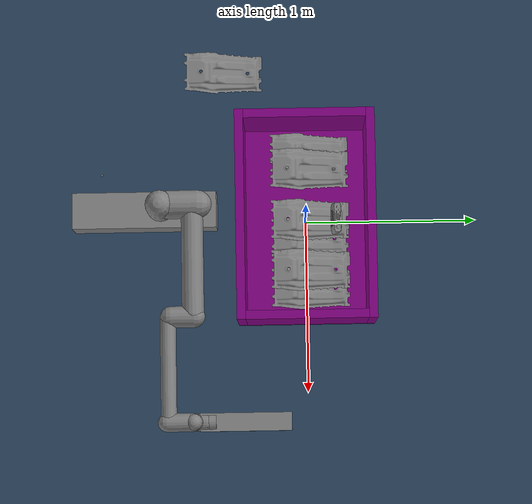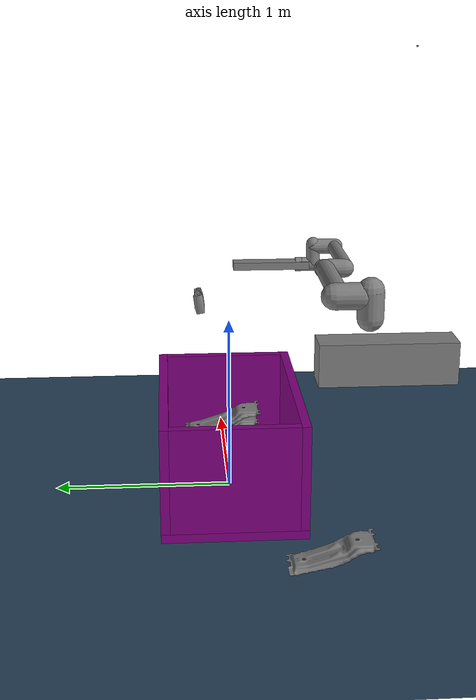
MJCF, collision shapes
<!-- UR5e inspired from https://github.com/google-deepmind/mujoco_menagerie/tree/main/universal_robots_ur5e -->
<!-- Kitchen inspired by https://github.com/Farama-Foundation/Gymnasium-Robotics/tree/main/gymnasium_robotics/envs/franka_kitchen -->

<mujoco model="bmw bin picking scene">
  <include file="ur10e.xml"/>

  <option integrator="RK4" timestep="0.001" />
  <statistic center="0.3 0 0.4" extent="0.8"/>

  <visual>
    <headlight diffuse="0.6 0.6 0.6" ambient="0.1 0.1 0.1" specular="0 0 0"/>
    <rgba haze="0.15 0.25 0.35 1"/>
    <global azimuth="120" elevation="-20"/>
  </visual>
  <!-- Ground and lighting -->
  <asset>
    <texture type="skybox" builtin="gradient" rgb1="0.3 0.5 0.7" rgb2="0 0 0" width="512" height="3072"/>
    <texture type="2d" name="groundplane" builtin="checker" mark="edge" rgb1="0.2 0.3 0.4" rgb2="0.1 0.2 0.3"
      markrgb="0.8 0.8 0.8" width="300" height="300"/>
    <material name="groundplane" texture="groundplane" texuniform="true" texrepeat="5 5" reflectance="0.2"/>
  </asset>\
  <!-- Zivid camera -->
  <asset>
    <material name="purple" rgba="0.5 0 0.5 1"/>
    <material name="shadow" rgba="0 0 0 0.3"/>
    <material name="alum" rgba="0.5 0.5 0.5 1"/>
    <mesh file="ZividTwo-convexhull.stl"/>
    <mesh file="ZividTwo-simplified.stl"/>
  </asset>
  <!-- CAD part -->
  <asset>
    <mesh file="part.stl"/>
  </asset>

  <worldbody>
    <light pos="0 0 1.5" dir="0 0 -1" directional="true"/>
    <geom name="floor" pos="0 0 -0.1" size="0 0 0.05" type="plane" material="groundplane" contype="1" conaffinity="1"/>
    <site name="scene_camera_optical_frame" pos="0.0 -1.0 2.5" euler="3.64 0.0 0.0"/>
    <camera name="scene_camera" pos="0.0 -1.0 2.5" fovy="58" mode="fixed" resolution="640 480" euler="0.5 0.0 0.0"/>
     <!-- Aluminum Base -->
      <body name="alum_base" pos="0 -0.9 0.75">
          <geom type="box" size="0.10 0.40 0.125" material="alum"/>
      </body>

      <!-- Box Base -->
      <body name="box_base" pos="0 0 -0.025">
          <geom type="box" size="0.6 0.4 0.025" material="purple"/>
      </body>

      <!-- Front Wall -->
      <body name="front_wall" pos="0 0.375 0.3">
          <geom type="box" size="0.6 0.025 0.3" material="purple"/>
      </body>

      <!-- Back Wall -->
      <body name="back_wall" pos="0 -0.375 0.3">
          <geom type="box" size="0.6 0.025 0.3" material="purple"/>
      </body>

      <!-- Left Wall -->
      <body name="left_wall" pos="0.575 0 0.3">
          <geom type="box" size="0.025 0.35 0.3" material="purple"/>
      </body>

      <!-- Right Wall -->
      <body name="right_wall" pos="-0.575 0 0.3">
          <geom type="box" size="0.025 0.35 0.3" material="purple"/>
      </body>

      <!-- Zivid Camera -->
      <body name="zivid_camera_link" pos="0.0 0.2 1.151" euler="3.02 0.0 0.0">
          <geom type="mesh" mesh="ZividTwo-simplified" material="alum"/>
          <site name="zivid_camera_optical_frame" pos="0.085 0.028 0.122" euler="3.14 -3.14 0.0"/>
          <camera name="zivid_camera" pos="0.085 0.028 0.122" fovy="58" mode="fixed" resolution="640 480" euler="0.0 3.14 0.0"/>
      </body>

      <!-- CAD part 1-->
      <body name="CAD_part_1" pos="0 0 0.2" euler="0 0 1.57">
          <freejoint/>
          <inertial pos="0 0 0" mass=".1" diaginertia="0.1 0.1 0.1"/>
          <geom type="mesh" mesh="part" material="alum" contype="1" conaffinity="1"/>
      </body>
      <!-- CAD part 2-->
      <body name="CAD_part_2" pos="-0.9 -0.5 0.05" euler="0 0 1.57">
          <freejoint/>
          <inertial pos="0 0 0" mass=".1" diaginertia="0.1 0.1 0.1"/>
          <geom type="mesh" mesh="part" material="alum" contype="1" conaffinity="1"/>
      </body>
      <!-- CAD part 3-->
      <body name="CAD_part_3" pos="0.1 0 0.1" euler="0 0 1.57">
          <freejoint/>
          <inertial pos="0 0 0" mass=".1" diaginertia="0.1 0.1 0.1"/>
          <geom type="mesh" mesh="part" material="alum" contype="1" conaffinity="1"/>
      </body>
      <!-- CAD part 4-->
      <body name="CAD_part_4" pos="0.4 0 0.2" euler="0 0 1.57">
          <freejoint/>
          <inertial pos="0 0 0" mass=".1" diaginertia="0.1 0.1 0.1"/>
          <geom type="mesh" mesh="part" material="alum" contype="1" conaffinity="1"/>
      </body>
      <!-- CAD part 5-->
      <body name="CAD_part_5" pos="0.3 0 0.3" euler="0 0 1.57">
          <freejoint/>
          <inertial pos="0 0 0" mass=".1" diaginertia="0.1 0.1 0.1"/>
          <geom type="mesh" mesh="part" material="alum" contype="1" conaffinity="1"/>
      </body>
      <!-- CAD part 6-->
      <body name="CAD_part_6" pos="-0.4 0 0.1" euler="0 0 1.57">
          <freejoint/>
          <inertial pos="0 0 0" mass=".1" diaginertia="0.1 0.1 0.1"/>
          <geom type="mesh" mesh="part" material="alum" contype="1" conaffinity="1"/>
      </body>
      <!-- CAD part 7-->
      <body name="CAD_part_7" pos="-0.3 0 0.2" euler="0 0 1.57">
          <freejoint/>
          <inertial pos="0 0 0" mass=".1" diaginertia="0.1 0.1 0.1"/>
          <geom type="mesh" mesh="part" material="alum" contype="1" conaffinity="1"/>
      </body>
  </worldbody>

  <equality>
      <!-- Add all possible suctions here -->
      <weld name="CAD_part_suction_1" body1="ee_suction_cup" body2="CAD_part_1" active="false" torquescale="100"/>
      <weld name="CAD_part_suction_2" body1="ee_suction_cup" body2="CAD_part_2" active="false" torquescale="100"/>
      <weld name="CAD_part_suction_3" body1="ee_suction_cup" body2="CAD_part_3" active="false" torquescale="100"/>
      <weld name="CAD_part_suction_4" body1="ee_suction_cup" body2="CAD_part_4" active="false" torquescale="100"/>
      <weld name="CAD_part_suction_5" body1="ee_suction_cup" body2="CAD_part_5" active="false" torquescale="100"/>
      <weld name="CAD_part_suction_6" body1="ee_suction_cup" body2="CAD_part_6" active="false" torquescale="100"/>
      <weld name="CAD_part_suction_7" body1="ee_suction_cup" body2="CAD_part_7" active="false" torquescale="100"/>
  </equality>

</mujoco>

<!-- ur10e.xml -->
<mujoco model="ur10e">
  <compiler angle="radian" meshdir="assets" autolimits="true"/>

  <option integrator="implicitfast"/>

  <default>
    <default class="ur10e">
      <material specular="0.5" shininess="0.25"/>
      <joint axis="0 1 0" range="-6.28319 6.28319" armature="0.1"/>
      <general
        gaintype="fixed"
        biastype="affine"
        ctrlrange="-6.2831 6.2831"
        gainprm="2000"
        biasprm="0 -2000 -400"
        forcerange="-500 500"
      />
      <default class="size4">
        <default class="size3_limited">
          <joint range="-3.1415 3.1415" />
          <general ctrlrange="-3.1415 3.1415" />
        </default>
      </default>
      <default class="size2">
        <general gainprm="5000" biasprm="0 -5000 -1000" forcerange="-150 150" />
      </default>
      <default class="visual">
        <geom type="mesh" contype="0" conaffinity="0" group="2" />
      </default>
      <default class="collision">
        <geom type="capsule" group="3" />
        <default class="eef_collision">
          <geom type="cylinder" />
        </default>
      </default>
      <site size="0.001" rgba="0.5 0.5 0.5 0.3" group="4"/>
    </default>
  </default>

  <asset>
    <material class="ur10e" name="black" rgba="0.033 0.033 0.033 1"/>
    <material class="ur10e" name="yellow" rgba="1 1 0 1"/>
    <material class="ur10e" name="jointgray" rgba="0.278 0.278 0.278 1"/>
    <material class="ur10e" name="linkgray" rgba="0.82 0.82 0.82 1"/>
    <material class="ur10e" name="urblue" rgba="0.49 0.678 0.8 1"/>
    <mesh file="assets/base_0.obj"/>
    <mesh file="assets/base_1.obj"/>
    <mesh file="assets/shoulder_0.obj"/>
    <mesh file="assets/shoulder_1.obj"/>
    <mesh file="assets/shoulder_2.obj"/>
    <mesh file="assets/upperarm_0.obj"/>
    <mesh file="assets/upperarm_1.obj"/>
    <mesh file="assets/upperarm_2.obj"/>
    <mesh file="assets/upperarm_3.obj"/>
    <mesh file="assets/forearm_0.obj"/>
    <mesh file="assets/forearm_1.obj"/>
    <mesh file="assets/forearm_2.obj"/>
    <mesh file="assets/forearm_3.obj"/>
    <mesh file="assets/wrist1_0.obj"/>
    <mesh file="assets/wrist1_1.obj"/>
    <mesh file="assets/wrist1_2.obj"/>
    <mesh file="assets/wrist2_0.obj"/>
    <mesh file="assets/wrist2_1.obj"/>
    <mesh file="assets/wrist2_2.obj"/>
    <mesh file="assets/wrist3.obj"/>
    <mesh file="assets/magswitch.stl"/>
  </asset>

  <worldbody>
    <light name="spotlight" mode="targetbodycom" target="wrist_2_link" pos="0 -1 2"/>
    <body name="base" pos="0 -0.8 0.95" euler="0.0 0.0 0.0" childclass="ur10e">
      <inertial mass="4.0" pos="0 0 0" diaginertia="0.0061063308908 0.0061063308908 0.01125"/>
      <geom mesh="base_0" material="black" class="visual"/>
      <geom mesh="base_1" material="jointgray" class="visual"/>
      <body name="shoulder_link" pos="0 0 0.181">
        <inertial pos="0 0 0" mass="7.778" diaginertia="0.0314743 0.0314743 0.0218756"/>
        <joint name="shoulder_pan_joint" class="size4" axis="0 0 1" damping="50"/>
        <geom mesh="shoulder_0" material="urblue" class="visual"/>
        <geom mesh="shoulder_1" material="black" class="visual"/>
        <geom mesh="shoulder_2" material="jointgray" class="visual"/>
        <geom class="collision" size="0.078 0.08" pos="0 0 -0.05"/>
        <body name="upper_arm_link" pos="0 0.176 0" quat="1 0 1 0">
          <inertial pos="0 0 0.3065" mass="12.93" diaginertia="0.423074 0.423074 0.0363656"/>
          <joint name="shoulder_lift_joint" class="size4" damping="50"/>
          <geom mesh="upperarm_0" material="black" class="visual"/>
          <geom mesh="upperarm_1" material="jointgray" class="visual"/>
          <geom mesh="upperarm_2" material="urblue" class="visual"/>
          <geom mesh="upperarm_3" material="linkgray" class="visual"/>
          <geom class="collision" pos="0 -0.05 0" quat="1 1 0 0" size="0.078 0.08"/>
          <geom class="collision" size="0.06 0.3" pos="0 0 0.3"/>
          <body name="forearm_link" pos="0 -0.137 0.613">
            <inertial pos="0 0 0.2855" mass="3.87" diaginertia="0.11059 0.11059 0.0108844"/>
            <joint name="elbow_joint" class="size3_limited" damping="50"/>
            <geom mesh="forearm_0" material="urblue" class="visual"/>
            <geom mesh="forearm_1" material="black" class="visual"/>
            <geom mesh="forearm_2" material="jointgray" class="visual"/>
            <geom mesh="forearm_3" material="linkgray" class="visual"/>
            <geom class="collision" pos="0 0.08 0" quat="1 1 0 0" size="0.058 0.065"/>
            <geom class="collision" size="0.043 0.28" pos="0 0 0.29"/>
            <body name="wrist_1_link" pos="0 0 0.571" quat="1 0 1 0">
              <inertial pos="0 0.135 0" quat="0.5 0.5 -0.5 0.5" mass="1.96"
                diaginertia="0.0055125 0.00510825 0.00510825"/>
              <joint name="wrist_1_joint" class="size4" damping="50"/>
              <geom mesh="wrist1_0" material="black" class="visual"/>
              <geom mesh="wrist1_1" material="urblue" class="visual"/>
              <geom mesh="wrist1_2" material="jointgray" class="visual"/>
              <geom class="collision" pos="0 0.06 0" quat="1 1 0 0" size="0.05 0.07"/>
              <body name="wrist_2_link" pos="0 0.135 0">
                <inertial pos="0 0 0.12" quat="0.5 0.5 -0.5 0.5" mass="1.96"
                  diaginertia="0.0055125 0.00510825 0.00510825"/>
                <joint name="wrist_2_joint" axis="0 0 1" class="size4" damping="50"/>
                <geom mesh="wrist2_0" material="black" class="visual"/>
                <geom mesh="wrist2_1" material="urblue" class="visual"/>
                <geom mesh="wrist2_2" material="jointgray" class="visual"/>
                <geom class="collision" size="0.046 0.065" pos="0 0 0.05"/>
                <geom class="collision" pos="0 0.028 0.12" quat="1 1 0 0" size="0.046 0.043"/>
                <body name="wrist_3_link" pos="0 0 0.12">
                  <inertial pos="0 0.092 0" quat="0 1 -1 0" mass="0.202"
                    diaginertia="0.000204525 0.000144346 0.000144346"/>
                  <joint name="wrist_3_joint" class="size4" damping="50"/>
                  <geom material="linkgray" mesh="wrist3" class="visual"/>
                  <geom class="eef_collision" pos="0 0.097 0" quat="1 1 0 0" size="0.046 0.02"/>
                  <site name="attachment_site" pos="0 0.1 0" quat="-1 1 0 0"/>
                  <body name="magswitch" pos="0 0.28 0" euler="3.14 0 0">
                    <inertial pos="0 0 0" mass="0.202"
                      diaginertia="0.000204525 0.000144346 0.000144346"/>
                    <geom mesh="magswitch" material="yellow" class="visual"/>
                    <body name="ee_suction_cup" gravcomp="1" pos="0 0 0.0"
                          euler="0 0 0">
                            <!-- Sensor Geom: Dedicated for collision detection -->
                        <geom name="suction_sensor_geom" class="collision" type="box" size="0.05 0.25 0.025" contype="1" conaffinity="1" margin="0"
                              gap="1"/>

                            <!-- Define the touch sensor that references the sensor geom -->

                        <site name="suction_cup" type="box" size="0.05 0.27 0.025"/>
                    </body>
                  </body>
                </body>
              </body>
            </body>
          </body>
        </body>
      </body>
    </body>
  </worldbody>

  <actuator>
    <general class="size4" name="shoulder_pan_joint" joint="shoulder_pan_joint"/>
    <general class="size4" name="shoulder_lift_joint" joint="shoulder_lift_joint"/>
    <general class="size3_limited" name="elbow_joint" joint="elbow_joint"/>
    <general class="size4" name="wrist_1_joint" joint="wrist_1_joint"/>
    <general class="size4" name="wrist_2_joint" joint="wrist_2_joint"/>
    <general class="size4" name="wrist_3_joint" joint="wrist_3_joint"/>
  </actuator>

</mujoco>
